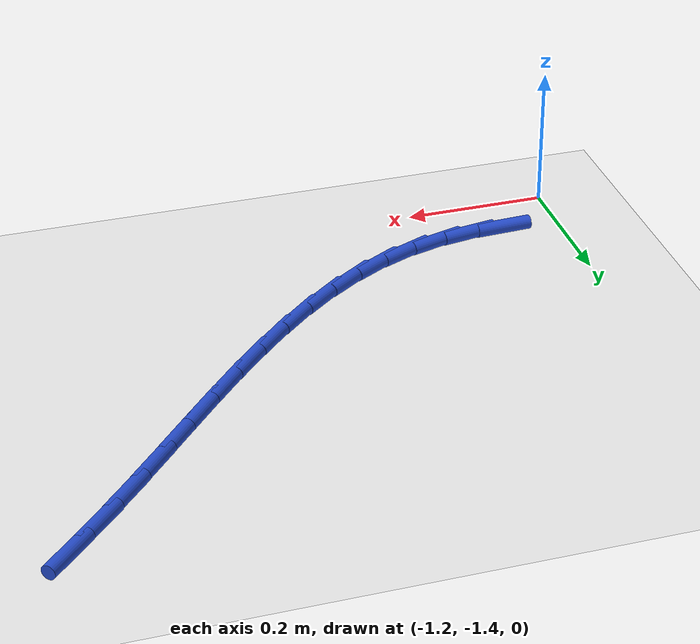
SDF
<sdf version="1.6">
 <world name="default">
  <model name="ground_plane">
   <static>1</static>
   <link name="link">
    <collision name="collision">
     <geometry><plane><normal>0 0 1</normal><size>100 100</size></plane></geometry>
     <surface><friction><ode><mu>100</mu><mu2>50</mu2></ode></friction></surface>
    </collision>
    <visual name="visual">
     <cast_shadows>0</cast_shadows>
     <geometry><plane><normal>0 0 1</normal><size>100 100</size></plane></geometry>
     <material>
      <script><uri>file://media/materials/scripts/gazebo.material</uri><name>Gazebo/WhiteGlow</name></script>
     </material>
    </visual>
   </link>
  </model>
  <model name="line">
   <link name="link_99">
    <pose>-1.115365899290124 -1.3224302419566565 0.01 0 1.57 0.04686171558988516</pose>
    <collision name="collision">
     <geometry><cylinder><radius>0.01</radius><length>0.08</length></cylinder></geometry>
    </collision>
    <visual name="visual">
     <material>
      <script><name>Gazebo/Blue</name><uri>file://media/materials/scripts/gazebo.material</uri></script>
     </material>
     <geometry><cylinder><radius>0.01</radius><length>0.08</length></cylinder></geometry>
    </visual>
   </link>
   <link name="link_100">
    <pose>-1.0622487462832046 -1.3199392573548379 0.01 0 1.57 0.15908754552703858</pose>
    <collision name="collision">
     <geometry><cylinder><radius>0.01</radius><length>0.08</length></cylinder></geometry>
    </collision>
    <visual name="visual">
     <material>
      <script><name>Gazebo/Blue</name><uri>file://media/materials/scripts/gazebo.material</uri></script>
     </material>
     <geometry><cylinder><radius>0.01</radius><length>0.08</length></cylinder></geometry>
    </visual>
   </link>
   <link name="link_101">
    <pose>-1.0105288396315166 -1.3116411406931 0.01 0 1.57 0.28108531289211397</pose>
    <collision name="collision">
     <geometry><cylinder><radius>0.01</radius><length>0.08</length></cylinder></geometry>
    </collision>
    <visual name="visual">
     <material>
      <script><name>Gazebo/Blue</name><uri>file://media/materials/scripts/gazebo.material</uri></script>
     </material>
     <geometry><cylinder><radius>0.01</radius><length>0.08</length></cylinder></geometry>
    </visual>
   </link>
   <link name="link_102">
    <pose>-0.9602963126866642 -1.2971375158605714 0.01 0 1.57 0.40435004335967567</pose>
    <collision name="collision">
     <geometry><cylinder><radius>0.01</radius><length>0.08</length></cylinder></geometry>
    </collision>
    <visual name="visual">
     <material>
      <script><name>Gazebo/Blue</name><uri>file://media/materials/scripts/gazebo.material</uri></script>
     </material>
     <geometry><cylinder><radius>0.01</radius><length>0.08</length></cylinder></geometry>
    </visual>
   </link>
   <link name="link_103">
    <pose>-0.9115786631028763 -1.276289755966765 0.01 0 1.57 0.512160691529621</pose>
    <collision name="collision">
     <geometry><cylinder><radius>0.01</radius><length>0.08</length></cylinder></geometry>
    </collision>
    <visual name="visual">
     <material>
      <script><name>Gazebo/Blue</name><uri>file://media/materials/scripts/gazebo.material</uri></script>
     </material>
     <geometry><cylinder><radius>0.01</radius><length>0.08</length></cylinder></geometry>
    </visual>
   </link>
   <link name="link_104">
    <pose>-0.8642316740158742 -1.2496713314423582 0.01 0 1.57 0.6017979684606687</pose>
    <collision name="collision">
     <geometry><cylinder><radius>0.01</radius><length>0.08</length></cylinder></geometry>
    </collision>
    <visual name="visual">
     <material>
      <script><name>Gazebo/Blue</name><uri>file://media/materials/scripts/gazebo.material</uri></script>
     </material>
     <geometry><cylinder><radius>0.01</radius><length>0.08</length></cylinder></geometry>
    </visual>
   </link>
   <link name="link_105">
    <pose>-0.8180819647550891 -1.217976654549355 0.01 0 1.57 0.6744147893058059</pose>
    <collision name="collision">
     <geometry><cylinder><radius>0.01</radius><length>0.08</length></cylinder></geometry>
    </collision>
    <visual name="visual">
     <material>
      <script><name>Gazebo/Blue</name><uri>file://media/materials/scripts/gazebo.material</uri></script>
     </material>
     <geometry><cylinder><radius>0.01</radius><length>0.08</length></cylinder></geometry>
    </visual>
   </link>
   <link name="link_106">
    <pose>-0.7729561546499525 -1.1819001375497582 0.01 0 1.57 0.7317682043597991</pose>
    <collision name="collision">
     <geometry><cylinder><radius>0.01</radius><length>0.08</length></cylinder></geometry>
    </collision>
    <visual name="visual">
     <material>
      <script><name>Gazebo/Blue</name><uri>file://media/materials/scripts/gazebo.material</uri></script>
     </material>
     <geometry><cylinder><radius>0.01</radius><length>0.08</length></cylinder></geometry>
    </visual>
   </link>
   <link name="link_107">
    <pose>-0.7286808630298963 -1.1421361927055724 0.01 0 1.57 0.775657376402751</pose>
    <collision name="collision">
     <geometry><cylinder><radius>0.01</radius><length>0.08</length></cylinder></geometry>
    </collision>
    <visual name="visual">
     <material>
      <script><name>Gazebo/Blue</name><uri>file://media/materials/scripts/gazebo.material</uri></script>
     </material>
     <geometry><cylinder><radius>0.01</radius><length>0.08</length></cylinder></geometry>
    </visual>
   </link>
   <link name="link_108">
    <pose>-0.6850827092243532 -1.0993792322788019 0.01 0 1.57 0.8076425704878136</pose>
    <collision name="collision">
     <geometry><cylinder><radius>0.01</radius><length>0.08</length></cylinder></geometry>
    </collision>
    <visual name="visual">
     <material>
      <script><name>Gazebo/Blue</name><uri>file://media/materials/scripts/gazebo.material</uri></script>
     </material>
     <geometry><cylinder><radius>0.01</radius><length>0.08</length></cylinder></geometry>
    </visual>
   </link>
   <link name="link_109">
    <pose>-0.641988312562754 -1.0543236685314494 0.01 0 1.57 0.8289354984346312</pose>
    <collision name="collision">
     <geometry><cylinder><radius>0.01</radius><length>0.08</length></cylinder></geometry>
    </collision>
    <visual name="visual">
     <material>
      <script><name>Gazebo/Blue</name><uri>file://media/materials/scripts/gazebo.material</uri></script>
     </material>
     <geometry><cylinder><radius>0.01</radius><length>0.08</length></cylinder></geometry>
    </visual>
   </link>
   <link name="link_110">
    <pose>-0.5992242923745301 -1.0076639137255188 0.01 0 1.57 0.8403737457289491</pose>
    <collision name="collision">
     <geometry><cylinder><radius>0.01</radius><length>0.08</length></cylinder></geometry>
    </collision>
    <visual name="visual">
     <material>
      <script><name>Gazebo/Blue</name><uri>file://media/materials/scripts/gazebo.material</uri></script>
     </material>
     <geometry><cylinder><radius>0.01</radius><length>0.08</length></cylinder></geometry>
    </visual>
   </link>
   <link name="link_111">
    <pose>-0.5566172679891146 -0.9600943801230151 0.01 0 1.57 0.8424271480564065</pose>
    <collision name="collision">
     <geometry><cylinder><radius>0.01</radius><length>0.08</length></cylinder></geometry>
    </collision>
    <visual name="visual">
     <material>
      <script><name>Gazebo/Blue</name><uri>file://media/materials/scripts/gazebo.material</uri></script>
     </material>
     <geometry><cylinder><radius>0.01</radius><length>0.08</length></cylinder></geometry>
    </visual>
   </link>
   <link name="link_112">
    <pose>-0.5139938587359383 -0.9123094799859415 0.01 0 1.57 0.8352096551600063</pose>
    <collision name="collision">
     <geometry><cylinder><radius>0.01</radius><length>0.08</length></cylinder></geometry>
    </collision>
    <visual name="visual">
     <material>
      <script><name>Gazebo/Blue</name><uri>file://media/materials/scripts/gazebo.material</uri></script>
     </material>
     <geometry><cylinder><radius>0.01</radius><length>0.08</length></cylinder></geometry>
    </visual>
   </link>
   <link name="link_113">
    <pose>-0.471180683944433 -0.8650036255763012 0.01 0 1.57 0.8184883613790952</pose>
    <collision name="collision">
     <geometry><cylinder><radius>0.01</radius><length>0.08</length></cylinder></geometry>
    </collision>
    <visual name="visual">
     <material>
      <script><name>Gazebo/Blue</name><uri>file://media/materials/scripts/gazebo.material</uri></script>
     </material>
     <geometry><cylinder><radius>0.01</radius><length>0.08</length></cylinder></geometry>
    </visual>
   </link>
   <link name="link_114">
    <pose>-0.4280044534854623 -0.818871070627714 0.01 0 1.57 0.7965899411374533</pose>
    <collision name="collision">
     <geometry><cylinder><radius>0.01</radius><length>0.08</length></cylinder></geometry>
    </collision>
    <visual name="visual">
     <material>
      <script><name>Gazebo/Blue</name><uri>file://media/materials/scripts/gazebo.material</uri></script>
     </material>
     <geometry><cylinder><radius>0.01</radius><length>0.08</length></cylinder></geometry>
    </visual>
   </link>
   <link name="link_115">
    <pose>-0.38444948628361153 -0.7743301122394474 0.01 0 1.57 0.7843156908902377</pose>
    <collision name="collision">
     <geometry><cylinder><radius>0.01</radius><length>0.08</length></cylinder></geometry>
    </collision>
    <visual name="visual">
     <material>
      <script><name>Gazebo/Blue</name><uri>file://media/materials/scripts/gazebo.material</uri></script>
     </material>
     <geometry><cylinder><radius>0.01</radius><length>0.08</length></cylinder></geometry>
    </visual>
   </link>
  </model>
 </world>
</sdf>
